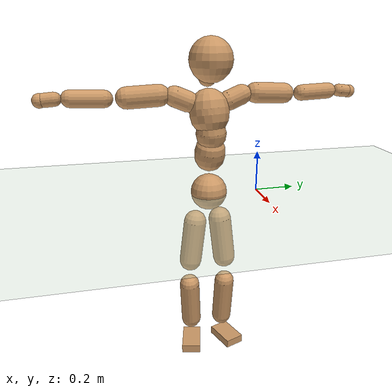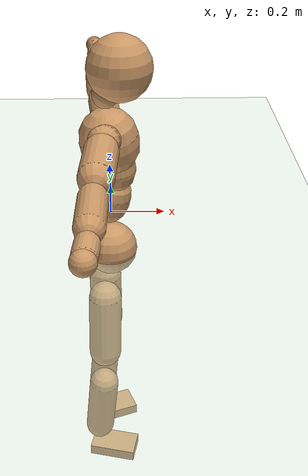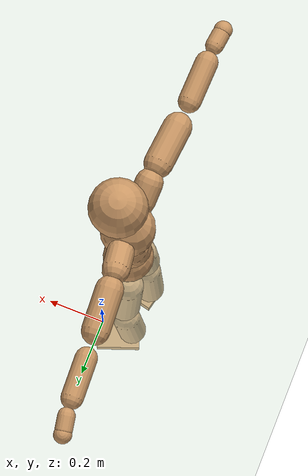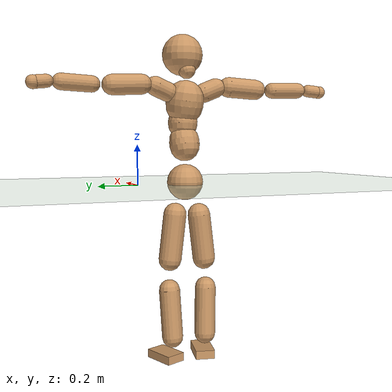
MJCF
<mujoco model="humanoid">
  <compiler coordinate="local" angle="radian"/>
  <default>
    <joint damping="0.0" armature="0.01" stiffness="0.0" limited="true"/>
    <geom conaffinity="1" condim="3" contype="7" margin="0.001" rgba="0.8 0.6 .4 1"/>
  </default>
  <asset>
    <texture type="skybox" builtin="gradient" rgb1=".4 .5 .6" rgb2="0 0 0" width="100" height="100"/>
    <texture builtin="flat" height="1278" mark="cross" markrgb="1 1 1" name="texgeom" random="0.01" rgb1="0.8 0.6 0.4" rgb2="0.8 0.6 0.4" type="cube" width="127"/>
    <texture builtin="checker" height="100" name="texplane" rgb1="0 0 0" rgb2="0.8 0.8 0.8" type="2d" width="100"/>
    <material name="MatPlane" reflectance="0.5" shininess="1" specular="1" texrepeat="60 60" texture="texplane"/>
    <material name="geom" texture="texgeom" texuniform="true"/>
  </asset>
  <worldbody>
    <light cutoff="100" diffuse="1 1 1" dir="-0 0 -1.3" directional="true" exponent="1" pos="0 0 1.3" specular=".1 .1 .1"/>
    <geom conaffinity="1" condim="3" name="floor" pos="0 0 0" rgba="0.8 0.9 0.8 1" size="100 100 .2" type="plane" material="MatPlane"/>
    <body name="Pelvis" pos="0.0009 -0.2516 0.0103">
      <freejoint name="Pelvis"/>
      <geom type="sphere" contype="1" conaffinity="1" density="500" size="0.0913" pos="0.0000 0.0000 0.0000" name="Pelvis"/>
      <body name="L_Hip" pos="-0.0238 0.056 -0.0833">
        <joint name="L_Hip_x" type="hinge" pos="0 0 0" axis="1 0 0" stiffness="800" damping="80" armature="0.02" range="-180.0000 180.0000"/>
        <joint name="L_Hip_y" type="hinge" pos="0 0 0" axis="0 1 0" stiffness="800" damping="80" armature="0.02" range="-180.0000 180.0000"/>
        <joint name="L_Hip_z" type="hinge" pos="0 0 0" axis="0 0 1" stiffness="800" damping="80" armature="0.02" range="-180.0000 180.0000"/>
        <geom type="capsule" contype="1" conaffinity="1" density="500" fromto="0.0011 0.0086 -0.0763 0.0042 0.0345 -0.3053" size="0.0578" name="L_Hip"/>
        <body name="L_Knee" pos="0.0053 0.0431 -0.3816">
          <joint name="L_Knee_x" type="hinge" pos="0 0 0" axis="1 0 0" stiffness="800" damping="80" armature="0.02" range="-180.0000 180.0000"/>
          <joint name="L_Knee_y" type="hinge" pos="0 0 0" axis="0 1 0" stiffness="800" damping="80" armature="0.02" range="-180.0000 180.0000"/>
          <joint name="L_Knee_z" type="hinge" pos="0 0 0" axis="0 0 1" stiffness="800" damping="80" armature="0.02" range="-180.0000 180.0000"/>
          <geom type="capsule" contype="1" conaffinity="1" density="500" fromto="-0.0073 -0.0026 -0.0798 -0.0294 -0.0102 -0.3191" size="0.0528" name="L_Knee"/>
          <body name="L_Ankle" pos="-0.0367 -0.0128 -0.3989">
            <joint name="L_Ankle_x" type="hinge" pos="0 0 0" axis="1 0 0" stiffness="800" damping="80" armature="0.02" range="-180.0000 180.0000"/>
            <joint name="L_Ankle_y" type="hinge" pos="0 0 0" axis="0 1 0" stiffness="800" damping="80" armature="0.02" range="-180.0000 180.0000"/>
            <joint name="L_Ankle_z" type="hinge" pos="0 0 0" axis="0 0 1" stiffness="800" damping="80" armature="0.02" range="-180.0000 180.0000"/>
            <geom type="box" contype="1" conaffinity="1" density="500" pos="0.0582 0.0213 -0.0289" size="0.0811 0.0509 0.0211" quat="0.9847 0.0000 0.0000 0.1745" name="L_Ankle"/>
            <body name="L_Toe" pos="0.1165 0.0426 -0.0578">
              <joint name="L_Toe_x" type="hinge" pos="0 0 0" axis="1 0 0" stiffness="500" damping="50" armature="0.02" range="-180.0000 180.0000"/>
              <joint name="L_Toe_y" type="hinge" pos="0 0 0" axis="0 1 0" stiffness="500" damping="50" armature="0.02" range="-180.0000 180.0000"/>
              <joint name="L_Toe_z" type="hinge" pos="0 0 0" axis="0 0 1" stiffness="500" damping="50" armature="0.02" range="-180.0000 180.0000"/>
              <geom type="box" contype="1" conaffinity="1" density="500" pos="0.0000 0.0000 0.0299" size="0.001 0.0024 0.0011" quat="0.9838 0.0000 0.0000 0.1791" name="L_Toe"/>
            </body>
          </body>
        </body>
      </body>
      <body name="R_Hip" pos="-0.021 -0.0585 -0.0912">
        <joint name="R_Hip_x" type="hinge" pos="0 0 0" axis="1 0 0" stiffness="800" damping="80" armature="0.02" range="-180.0000 180.0000"/>
        <joint name="R_Hip_y" type="hinge" pos="0 0 0" axis="0 1 0" stiffness="800" damping="80" armature="0.02" range="-180.0000 180.0000"/>
        <joint name="R_Hip_z" type="hinge" pos="0 0 0" axis="0 0 1" stiffness="800" damping="80" armature="0.02" range="-180.0000 180.0000"/>
        <geom type="capsule" contype="1" conaffinity="1" density="500" fromto="-0.0010 -0.0089 -0.0754 -0.0039 -0.0356 -0.3015" size="0.0575" name="R_Hip"/>
        <body name="R_Knee" pos="-0.0049 -0.0445 -0.3768">
          <joint name="R_Knee_x" type="hinge" pos="0 0 0" axis="1 0 0" stiffness="800" damping="80" armature="0.02" range="-180.0000 180.0000"/>
          <joint name="R_Knee_y" type="hinge" pos="0 0 0" axis="0 1 0" stiffness="800" damping="80" armature="0.02" range="-180.0000 180.0000"/>
          <joint name="R_Knee_z" type="hinge" pos="0 0 0" axis="0 0 1" stiffness="800" damping="80" armature="0.02" range="-180.0000 180.0000"/>
          <geom type="capsule" contype="1" conaffinity="1" density="500" fromto="-0.0067 0.0036 -0.0788 -0.0267 0.0145 -0.3152" size="0.0533" name="R_Knee"/>
          <body name="R_Ankle" pos="-0.0334 0.0181 -0.394">
            <joint name="R_Ankle_x" type="hinge" pos="0 0 0" axis="1 0 0" stiffness="800" damping="80" armature="0.02" range="-180.0000 180.0000"/>
            <joint name="R_Ankle_y" type="hinge" pos="0 0 0" axis="0 1 0" stiffness="800" damping="80" armature="0.02" range="-180.0000 180.0000"/>
            <joint name="R_Ankle_z" type="hinge" pos="0 0 0" axis="0 0 1" stiffness="800" damping="80" armature="0.02" range="-180.0000 180.0000"/>
            <geom type="box" contype="1" conaffinity="1" density="500" pos="0.0625 -0.0147 -0.0308" size="0.0865 0.0493 0.0218" quat="0.9933 0.0000 0.0000 -0.1155" name="R_Ankle"/>
            <body name="R_Toe" pos="0.125 -0.0294 -0.0616">
              <joint name="R_Toe_x" type="hinge" pos="0 0 0" axis="1 0 0" stiffness="500" damping="50" armature="0.02" range="-180.0000 180.0000"/>
              <joint name="R_Toe_y" type="hinge" pos="0 0 0" axis="0 1 0" stiffness="500" damping="50" armature="0.02" range="-180.0000 180.0000"/>
              <joint name="R_Toe_z" type="hinge" pos="0 0 0" axis="0 0 1" stiffness="500" damping="50" armature="0.02" range="-180.0000 180.0000"/>
              <geom type="box" contype="1" conaffinity="1" density="500" pos="0.0000 0.0000 0.0327" size="0.001 0.0024 0.0012" quat="0.9943 0.0000 0.0000 -0.1063" name="R_Toe"/>
            </body>
          </body>
        </body>
      </body>
      <body name="Torso" pos="-0.0244 0.0039 0.1241">
        <joint name="Torso_x" type="hinge" pos="0 0 0" axis="1 0 0" stiffness="1000" damping="100" armature="0.02" range="-180.0000 180.0000"/>
        <joint name="Torso_y" type="hinge" pos="0 0 0" axis="0 1 0" stiffness="1000" damping="100" armature="0.02" range="-180.0000 180.0000"/>
        <joint name="Torso_z" type="hinge" pos="0 0 0" axis="0 0 1" stiffness="1000" damping="100" armature="0.02" range="-180.0000 180.0000"/>
        <geom type="capsule" contype="1" conaffinity="1" density="500" fromto="0.0211 0.0029 0.0876 0.0140 0.0019 0.0584" size="0.0755" name="Torso"/>
        <body name="Spine" pos="0.0351 0.0049 0.146">
          <joint name="Spine_x" type="hinge" pos="0 0 0" axis="1 0 0" stiffness="1000" damping="100" armature="0.02" range="-180.0000 180.0000"/>
          <joint name="Spine_y" type="hinge" pos="0 0 0" axis="0 1 0" stiffness="1000" damping="100" armature="0.02" range="-180.0000 180.0000"/>
          <joint name="Spine_z" type="hinge" pos="0 0 0" axis="0 0 1" stiffness="1000" damping="100" armature="0.02" range="-180.0000 180.0000"/>
          <geom type="capsule" contype="1" conaffinity="1" density="500" fromto="0.0018 -0.0018 0.0354 0.0012 -0.0012 0.0236" size="0.0741" name="Spine"/>
          <body name="Chest" pos="0.003 -0.0029 0.0589">
            <joint name="Chest_x" type="hinge" pos="0 0 0" axis="1 0 0" stiffness="1000" damping="100" armature="0.02" range="-180.0000 180.0000"/>
            <joint name="Chest_y" type="hinge" pos="0 0 0" axis="0 1 0" stiffness="1000" damping="100" armature="0.02" range="-180.0000 180.0000"/>
            <joint name="Chest_z" type="hinge" pos="0 0 0" axis="0 0 1" stiffness="1000" damping="100" armature="0.02" range="-180.0000 180.0000"/>
            <geom type="capsule" contype="1" conaffinity="1" density="500" fromto="-0.0154 -0.0056 0.0866 -0.0102 -0.0038 0.0577" size="0.0954" name="Chest"/>
            <body name="Neck" pos="-0.0324 -0.014 0.2114">
              <joint name="Neck_x" type="hinge" pos="0 0 0" axis="1 0 0" stiffness="500" damping="50" armature="0.02" range="-180.0000 180.0000"/>
              <joint name="Neck_y" type="hinge" pos="0 0 0" axis="0 1 0" stiffness="500" damping="50" armature="0.02" range="-180.0000 180.0000"/>
              <joint name="Neck_z" type="hinge" pos="0 0 0" axis="0 0 1" stiffness="500" damping="50" armature="0.02" range="-180.0000 180.0000"/>
              <geom type="capsule" contype="1" conaffinity="1" density="500" fromto="0.0106 0.0016 0.0196 0.0426 0.0065 0.0783" size="0.0438" name="Neck"/>
              <body name="Head" pos="0.0532 0.0081 0.0979">
                <joint name="Head_x" type="hinge" pos="0 0 0" axis="1 0 0" stiffness="500" damping="50" armature="0.02" range="-180.0000 180.0000"/>
                <joint name="Head_y" type="hinge" pos="0 0 0" axis="0 1 0" stiffness="500" damping="50" armature="0.02" range="-180.0000 180.0000"/>
                <joint name="Head_z" type="hinge" pos="0 0 0" axis="0 0 1" stiffness="500" damping="50" armature="0.02" range="-180.0000 180.0000"/>
                <geom type="sphere" contype="1" conaffinity="1" density="500" size="0.1025" pos="0.0000 0.0000 0.0000" name="Head"/>
              </body>
            </body>
            <body name="L_Thorax" pos="-0.0208 0.0672 0.1106">
              <joint name="L_Thorax_x" type="hinge" pos="0 0 0" axis="1 0 0" stiffness="500" damping="50" armature="0.02" range="-180.0000 180.0000"/>
              <joint name="L_Thorax_y" type="hinge" pos="0 0 0" axis="0 1 0" stiffness="500" damping="50" armature="0.02" range="-180.0000 180.0000"/>
              <joint name="L_Thorax_z" type="hinge" pos="0 0 0" axis="0 0 1" stiffness="500" damping="50" armature="0.02" range="-180.0000 180.0000"/>
              <geom type="capsule" contype="1" conaffinity="1" density="500" fromto="-0.0032 0.0229 0.0086 -0.0128 0.0915 0.0344" size="0.0482" name="L_Thorax"/>
              <body name="L_Shoulder" pos="-0.016 0.1143 0.043">
                <joint name="L_Shoulder_x" type="hinge" pos="0 0 0" axis="1 0 0" stiffness="500" damping="50" armature="0.02" range="-720.0000 720.0000"/>
                <joint name="L_Shoulder_y" type="hinge" pos="0 0 0" axis="0 1 0" stiffness="500" damping="50" armature="0.02" range="-720.0000 720.0000"/>
                <joint name="L_Shoulder_z" type="hinge" pos="0 0 0" axis="0 0 1" stiffness="500" damping="50" armature="0.02" range="-720.0000 720.0000"/>
                <geom type="capsule" contype="1" conaffinity="1" density="500" fromto="-0.0026 0.0493 -0.0028 -0.0106 0.1971 -0.0111" size="0.0493" name="L_Shoulder"/>
                <body name="L_Elbow" pos="-0.0132 0.2464 -0.0139">
                  <joint name="L_Elbow_x" type="hinge" pos="0 0 0" axis="1 0 0" stiffness="500" damping="50" armature="0.02" range="-720.0000 720.0000"/>
                  <joint name="L_Elbow_y" type="hinge" pos="0 0 0" axis="0 1 0" stiffness="500" damping="50" armature="0.02" range="-720.0000 720.0000"/>
                  <joint name="L_Elbow_z" type="hinge" pos="0 0 0" axis="0 0 1" stiffness="500" damping="50" armature="0.02" range="-720.0000 720.0000"/>
                  <geom type="capsule" contype="1" conaffinity="1" density="500" fromto="-0.0022 0.0481 0.0016 -0.0086 0.1925 0.0065" size="0.039" name="L_Elbow"/>
                  <body name="L_Wrist" pos="-0.0108 0.2407 0.0081">
                    <joint name="L_Wrist_x" type="hinge" pos="0 0 0" axis="1 0 0" stiffness="300" damping="30" armature="0.02" range="-180.0000 180.0000"/>
                    <joint name="L_Wrist_y" type="hinge" pos="0 0 0" axis="0 1 0" stiffness="300" damping="30" armature="0.02" range="-180.0000 180.0000"/>
                    <joint name="L_Wrist_z" type="hinge" pos="0 0 0" axis="0 0 1" stiffness="300" damping="30" armature="0.02" range="-180.0000 180.0000"/>
                    <geom type="capsule" contype="1" conaffinity="1" density="500" fromto="-0.0027 0.0154 -0.0019 -0.0110 0.0617 -0.0075" size="0.0308" name="L_Wrist"/>
                    <body name="L_Hand" pos="-0.0137 0.0771 -0.0094">
                      <joint name="L_Hand_x" type="hinge" pos="0 0 0" axis="1 0 0" stiffness="300" damping="30" armature="0.02" range="-180.0000 180.0000"/>
                      <joint name="L_Hand_y" type="hinge" pos="0 0 0" axis="0 1 0" stiffness="300" damping="30" armature="0.02" range="-180.0000 180.0000"/>
                      <joint name="L_Hand_z" type="hinge" pos="0 0 0" axis="0 0 1" stiffness="300" damping="30" armature="0.02" range="-180.0000 180.0000"/>
                      <geom type="sphere" contype="1" conaffinity="1" density="500" size="0.0319" pos="0.0000 0.0000 0.0000" name="L_Hand"/>
                    </body>
                  </body>
                </body>
              </body>
            </body>
            <body name="R_Thorax" pos="-0.0236 -0.0814 0.1111">
              <joint name="R_Thorax_x" type="hinge" pos="0 0 0" axis="1 0 0" stiffness="500" damping="50" armature="0.02" range="-180.0000 180.0000"/>
              <joint name="R_Thorax_y" type="hinge" pos="0 0 0" axis="0 1 0" stiffness="500" damping="50" armature="0.02" range="-180.0000 180.0000"/>
              <joint name="R_Thorax_z" type="hinge" pos="0 0 0" axis="0 0 1" stiffness="500" damping="50" armature="0.02" range="-180.0000 180.0000"/>
              <geom type="capsule" contype="1" conaffinity="1" density="500" fromto="-0.0011 -0.0215 0.0089 -0.0046 -0.0862 0.0355" size="0.0491" name="R_Thorax"/>
              <body name="R_Shoulder" pos="-0.0057 -0.1077 0.0444">
                <joint name="R_Shoulder_x" type="hinge" pos="0 0 0" axis="1 0 0" stiffness="500" damping="50" armature="0.02" range="-720.0000 720.0000"/>
                <joint name="R_Shoulder_y" type="hinge" pos="0 0 0" axis="0 1 0" stiffness="500" damping="50" armature="0.02" range="-720.0000 720.0000"/>
                <joint name="R_Shoulder_z" type="hinge" pos="0 0 0" axis="0 0 1" stiffness="500" damping="50" armature="0.02" range="-720.0000 720.0000"/>
                <geom type="capsule" contype="1" conaffinity="1" density="500" fromto="-0.0043 -0.0495 -0.0029 -0.0173 -0.1979 -0.0115" size="0.0512" name="R_Shoulder"/>
                <body name="R_Elbow" pos="-0.0216 -0.2474 -0.0143">
                  <joint name="R_Elbow_x" type="hinge" pos="0 0 0" axis="1 0 0" stiffness="500" damping="50" armature="0.02" range="-720.0000 720.0000"/>
                  <joint name="R_Elbow_y" type="hinge" pos="0 0 0" axis="0 1 0" stiffness="500" damping="50" armature="0.02" range="-720.0000 720.0000"/>
                  <joint name="R_Elbow_z" type="hinge" pos="0 0 0" axis="0 0 1" stiffness="500" damping="50" armature="0.02" range="-720.0000 720.0000"/>
                  <geom type="capsule" contype="1" conaffinity="1" density="500" fromto="-0.0016 -0.0502 0.0015 -0.0064 -0.2007 0.0060" size="0.0406" name="R_Elbow"/>
                  <body name="R_Wrist" pos="-0.008 -0.2508 0.0075">
                    <joint name="R_Wrist_x" type="hinge" pos="0 0 0" axis="1 0 0" stiffness="300" damping="30" armature="0.02" range="-180.0000 180.0000"/>
                    <joint name="R_Wrist_y" type="hinge" pos="0 0 0" axis="0 1 0" stiffness="300" damping="30" armature="0.02" range="-180.0000 180.0000"/>
                    <joint name="R_Wrist_z" type="hinge" pos="0 0 0" axis="0 0 1" stiffness="300" damping="30" armature="0.02" range="-180.0000 180.0000"/>
                    <geom type="capsule" contype="1" conaffinity="1" density="500" fromto="-0.0018 -0.0162 -0.0015 -0.0071 -0.0649 -0.0060" size="0.0321" name="R_Wrist"/>
                    <body name="R_Hand" pos="-0.0089 -0.0811 -0.0075">
                      <joint name="R_Hand_x" type="hinge" pos="0 0 0" axis="1 0 0" stiffness="300" damping="30" armature="0.02" range="-180.0000 180.0000"/>
                      <joint name="R_Hand_y" type="hinge" pos="0 0 0" axis="0 1 0" stiffness="300" damping="30" armature="0.02" range="-180.0000 180.0000"/>
                      <joint name="R_Hand_z" type="hinge" pos="0 0 0" axis="0 0 1" stiffness="300" damping="30" armature="0.02" range="-180.0000 180.0000"/>
                      <geom type="sphere" contype="1" conaffinity="1" density="500" size="0.0331" pos="0.0000 0.0000 0.0000" name="R_Hand"/>
                    </body>
                  </body>
                </body>
              </body>
            </body>
          </body>
        </body>
      </body>
    </body>
  </worldbody>
  <actuator>
    <motor name="L_Hip_x" joint="L_Hip_x" gear="500"/>
    <motor name="L_Hip_y" joint="L_Hip_y" gear="500"/>
    <motor name="L_Hip_z" joint="L_Hip_z" gear="500"/>
    <motor name="L_Knee_x" joint="L_Knee_x" gear="500"/>
    <motor name="L_Knee_y" joint="L_Knee_y" gear="500"/>
    <motor name="L_Knee_z" joint="L_Knee_z" gear="500"/>
    <motor name="L_Ankle_x" joint="L_Ankle_x" gear="500"/>
    <motor name="L_Ankle_y" joint="L_Ankle_y" gear="500"/>
    <motor name="L_Ankle_z" joint="L_Ankle_z" gear="500"/>
    <motor name="L_Toe_x" joint="L_Toe_x" gear="500"/>
    <motor name="L_Toe_y" joint="L_Toe_y" gear="500"/>
    <motor name="L_Toe_z" joint="L_Toe_z" gear="500"/>
    <motor name="R_Hip_x" joint="R_Hip_x" gear="500"/>
    <motor name="R_Hip_y" joint="R_Hip_y" gear="500"/>
    <motor name="R_Hip_z" joint="R_Hip_z" gear="500"/>
    <motor name="R_Knee_x" joint="R_Knee_x" gear="500"/>
    <motor name="R_Knee_y" joint="R_Knee_y" gear="500"/>
    <motor name="R_Knee_z" joint="R_Knee_z" gear="500"/>
    <motor name="R_Ankle_x" joint="R_Ankle_x" gear="500"/>
    <motor name="R_Ankle_y" joint="R_Ankle_y" gear="500"/>
    <motor name="R_Ankle_z" joint="R_Ankle_z" gear="500"/>
    <motor name="R_Toe_x" joint="R_Toe_x" gear="500"/>
    <motor name="R_Toe_y" joint="R_Toe_y" gear="500"/>
    <motor name="R_Toe_z" joint="R_Toe_z" gear="500"/>
    <motor name="Torso_x" joint="Torso_x" gear="500"/>
    <motor name="Torso_y" joint="Torso_y" gear="500"/>
    <motor name="Torso_z" joint="Torso_z" gear="500"/>
    <motor name="Spine_x" joint="Spine_x" gear="500"/>
    <motor name="Spine_y" joint="Spine_y" gear="500"/>
    <motor name="Spine_z" joint="Spine_z" gear="500"/>
    <motor name="Chest_x" joint="Chest_x" gear="500"/>
    <motor name="Chest_y" joint="Chest_y" gear="500"/>
    <motor name="Chest_z" joint="Chest_z" gear="500"/>
    <motor name="Neck_x" joint="Neck_x" gear="500"/>
    <motor name="Neck_y" joint="Neck_y" gear="500"/>
    <motor name="Neck_z" joint="Neck_z" gear="500"/>
    <motor name="Head_x" joint="Head_x" gear="500"/>
    <motor name="Head_y" joint="Head_y" gear="500"/>
    <motor name="Head_z" joint="Head_z" gear="500"/>
    <motor name="L_Thorax_x" joint="L_Thorax_x" gear="500"/>
    <motor name="L_Thorax_y" joint="L_Thorax_y" gear="500"/>
    <motor name="L_Thorax_z" joint="L_Thorax_z" gear="500"/>
    <motor name="L_Shoulder_x" joint="L_Shoulder_x" gear="500"/>
    <motor name="L_Shoulder_y" joint="L_Shoulder_y" gear="500"/>
    <motor name="L_Shoulder_z" joint="L_Shoulder_z" gear="500"/>
    <motor name="L_Elbow_x" joint="L_Elbow_x" gear="500"/>
    <motor name="L_Elbow_y" joint="L_Elbow_y" gear="500"/>
    <motor name="L_Elbow_z" joint="L_Elbow_z" gear="500"/>
    <motor name="L_Wrist_x" joint="L_Wrist_x" gear="500"/>
    <motor name="L_Wrist_y" joint="L_Wrist_y" gear="500"/>
    <motor name="L_Wrist_z" joint="L_Wrist_z" gear="500"/>
    <motor name="L_Hand_x" joint="L_Hand_x" gear="500"/>
    <motor name="L_Hand_y" joint="L_Hand_y" gear="500"/>
    <motor name="L_Hand_z" joint="L_Hand_z" gear="500"/>
    <motor name="R_Thorax_x" joint="R_Thorax_x" gear="500"/>
    <motor name="R_Thorax_y" joint="R_Thorax_y" gear="500"/>
    <motor name="R_Thorax_z" joint="R_Thorax_z" gear="500"/>
    <motor name="R_Shoulder_x" joint="R_Shoulder_x" gear="500"/>
    <motor name="R_Shoulder_y" joint="R_Shoulder_y" gear="500"/>
    <motor name="R_Shoulder_z" joint="R_Shoulder_z" gear="500"/>
    <motor name="R_Elbow_x" joint="R_Elbow_x" gear="500"/>
    <motor name="R_Elbow_y" joint="R_Elbow_y" gear="500"/>
    <motor name="R_Elbow_z" joint="R_Elbow_z" gear="500"/>
    <motor name="R_Wrist_x" joint="R_Wrist_x" gear="500"/>
    <motor name="R_Wrist_y" joint="R_Wrist_y" gear="500"/>
    <motor name="R_Wrist_z" joint="R_Wrist_z" gear="500"/>
    <motor name="R_Hand_x" joint="R_Hand_x" gear="500"/>
    <motor name="R_Hand_y" joint="R_Hand_y" gear="500"/>
    <motor name="R_Hand_z" joint="R_Hand_z" gear="500"/>
  </actuator>
  <contact>
    <exclude body1="Torso" body2="Chest"/>
    <exclude body1="Head" body2="Chest"/>
    <exclude body1="R_Knee" body2="R_Toe"/>
    <exclude body1="R_Knee" body2="L_Ankle"/>
    <exclude body1="R_Knee" body2="L_Toe"/>
    <exclude body1="L_Knee" body2="L_Toe"/>
    <exclude body1="L_Knee" body2="R_Ankle"/>
    <exclude body1="L_Knee" body2="R_Toe"/>
    <exclude body1="L_Shoulder" body2="Chest"/>
    <exclude body1="R_Shoulder" body2="Chest"/>
  </contact>
  <sensor/>
  <size njmax="700" nconmax="700"/>
</mujoco>
